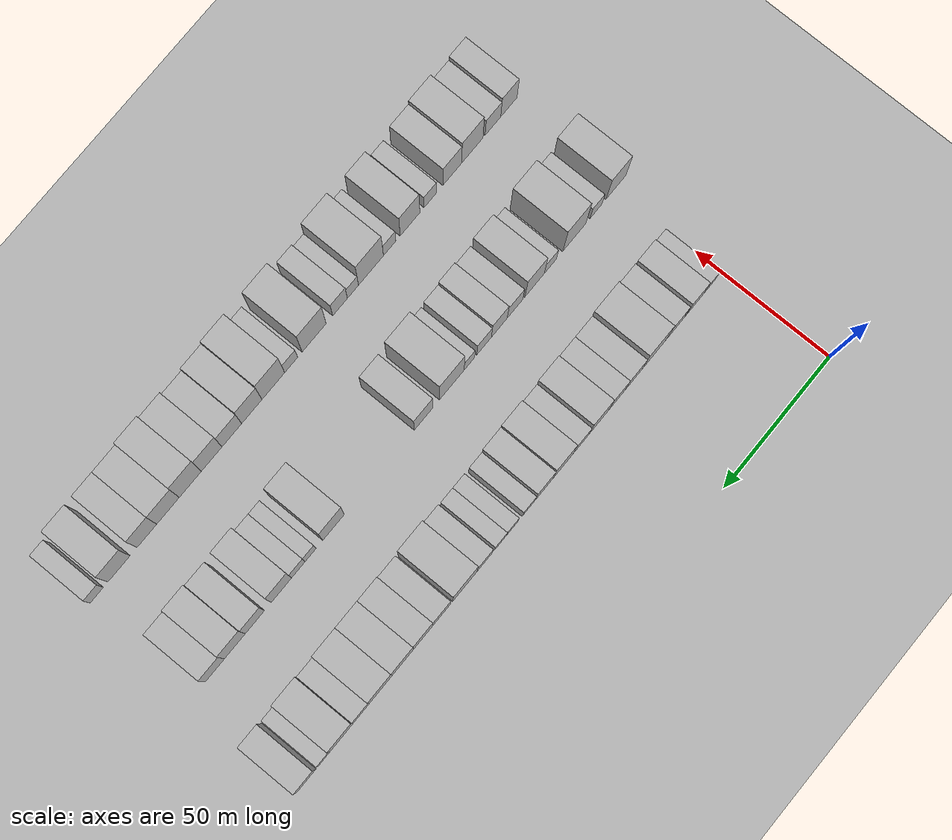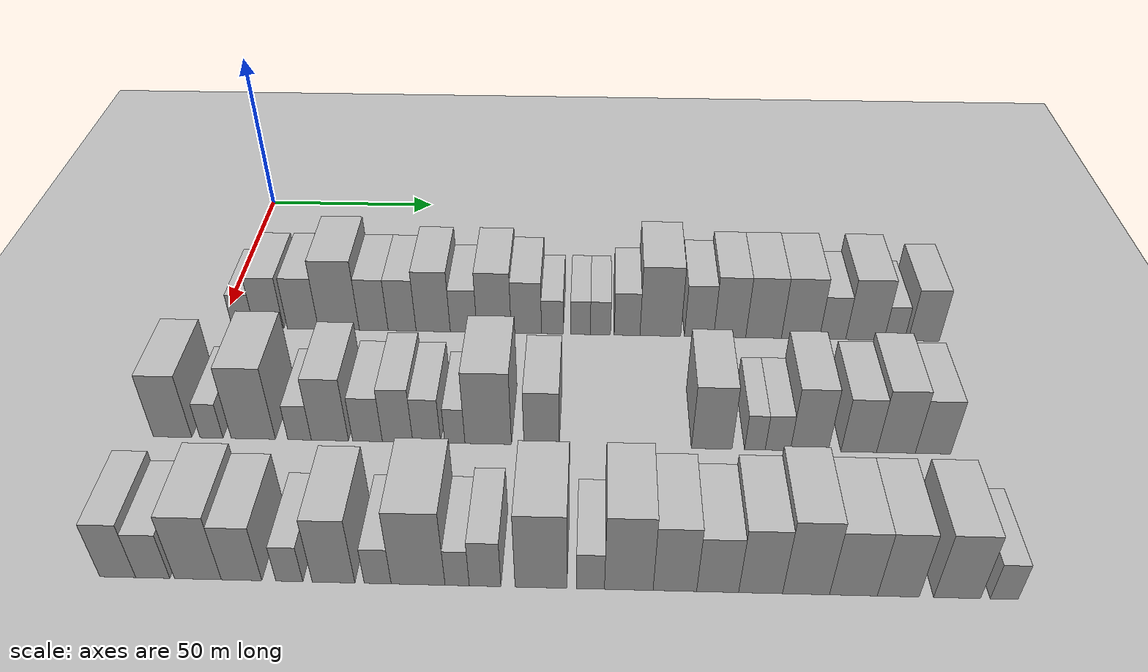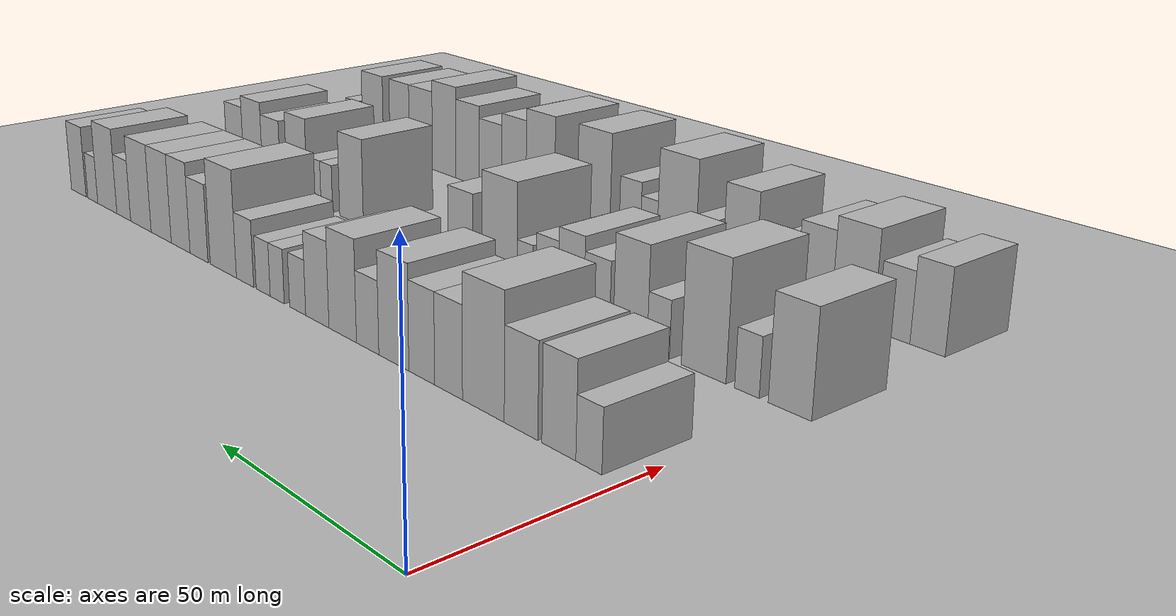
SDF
<sdf version="1.6">
 <world name="default">
  <include><name>ground_plane_1</name><uri>model://HANNAS_ground_plane</uri></include>
  <include>
   <name>ground_plane_2</name>
   <uri>model://HANNAS_ground_plane</uri>
   <pose>100 0 0  0 0 0</pose>
  </include>
  <model name="building_47">
   <static>1</static>
   <pose>50.0000 6.4486 0 0.000000 0.000000 0.000000</pose>
   <link name="link">
    <pose>0 0 6.00 0 0 0</pose>
    <collision name="collision"><geometry><box><size>20.0000 5.9728 12.0000</size></box></geometry></collision>
    <visual name="visual">
     <cast_shadows>0</cast_shadows>
     <geometry><box><size>20.0000 5.9728 12.0000</size></box></geometry>
     <material>
      <script>
       <uri>model://HANNAS_wall/materials/scripts</uri>
       <uri>model://HANNAS_wall/materials/textures</uri>
       <name>vrc/HANNAS_wall</name>
      </script>
     </material>
    </visual>
   </link>
  </model>
  <model name="building_48">
   <static>1</static>
   <pose>50.0000 13.4981 0 0.000000 0.000000 0.000000</pose>
   <link name="link">
    <pose>0 0 9.00 0 0 0</pose>
    <collision name="collision"><geometry><box><size>20.0000 8.1262 18.0000</size></box></geometry></collision>
    <visual name="visual">
     <cast_shadows>0</cast_shadows>
     <geometry><box><size>20.0000 8.1262 18.0000</size></box></geometry>
     <material>
      <script>
       <uri>model://HANNAS_wall/materials/scripts</uri>
       <uri>model://HANNAS_wall/materials/textures</uri>
       <name>vrc/HANNAS_wall</name>
      </script>
     </material>
    </visual>
   </link>
  </model>
  <model name="building_49">
   <static>1</static>
   <pose>50.0000 22.7994 0 0.000000 0.000000 0.000000</pose>
   <link name="link">
    <pose>0 0 9.00 0 0 0</pose>
    <collision name="collision"><geometry><box><size>20.0000 8.4763 18.0000</size></box></geometry></collision>
    <visual name="visual">
     <cast_shadows>0</cast_shadows>
     <geometry><box><size>20.0000 8.4763 18.0000</size></box></geometry>
     <material>
      <script>
       <uri>model://HANNAS_wall/materials/scripts</uri>
       <uri>model://HANNAS_wall/materials/textures</uri>
       <name>vrc/HANNAS_wall</name>
      </script>
     </material>
    </visual>
   </link>
  </model>
  <model name="building_50">
   <static>1</static>
   <pose>50.0000 32.6208 0 0.000000 0.000000 0.000000</pose>
   <link name="link">
    <pose>0 0 12.00 0 0 0</pose>
    <collision name="collision"><geometry><box><size>20.0000 11.1666 24.0000</size></box></geometry></collision>
    <visual name="visual">
     <cast_shadows>0</cast_shadows>
     <geometry><box><size>20.0000 11.1666 24.0000</size></box></geometry>
     <material>
      <script>
       <uri>model://HANNAS_wall/materials/scripts</uri>
       <uri>model://HANNAS_wall/materials/textures</uri>
       <name>vrc/HANNAS_wall</name>
      </script>
     </material>
    </visual>
   </link>
  </model>
  <model name="building_51">
   <static>1</static>
   <pose>50.0000 42.1323 0 0.000000 0.000000 0.000000</pose>
   <link name="link">
    <pose>0 0 9.00 0 0 0</pose>
    <collision name="collision"><geometry><box><size>20.0000 7.8563 18.0000</size></box></geometry></collision>
    <visual name="visual">
     <cast_shadows>0</cast_shadows>
     <geometry><box><size>20.0000 7.8563 18.0000</size></box></geometry>
     <material>
      <script>
       <uri>model://HANNAS_wall/materials/scripts</uri>
       <uri>model://HANNAS_wall/materials/textures</uri>
       <name>vrc/HANNAS_wall</name>
      </script>
     </material>
    </visual>
   </link>
  </model>
  <model name="building_52">
   <static>1</static>
   <pose>50.0000 49.8642 0 0.000000 0.000000 0.000000</pose>
   <link name="link">
    <pose>0 0 9.00 0 0 0</pose>
    <collision name="collision"><geometry><box><size>20.0000 7.6075 18.0000</size></box></geometry></collision>
    <visual name="visual">
     <cast_shadows>0</cast_shadows>
     <geometry><box><size>20.0000 7.6075 18.0000</size></box></geometry>
     <material>
      <script>
       <uri>model://HANNAS_wall/materials/scripts</uri>
       <uri>model://HANNAS_wall/materials/textures</uri>
       <name>vrc/HANNAS_wall</name>
      </script>
     </material>
    </visual>
   </link>
  </model>
  <model name="building_53">
   <static>1</static>
   <pose>50.0000 58.3111 0 0.000000 0.000000 0.000000</pose>
   <link name="link">
    <pose>0 0 10.50 0 0 0</pose>
    <collision name="collision"><geometry><box><size>20.0000 9.2863 21.0000</size></box></geometry></collision>
    <visual name="visual">
     <cast_shadows>0</cast_shadows>
     <geometry><box><size>20.0000 9.2863 21.0000</size></box></geometry>
     <material>
      <script>
       <uri>model://HANNAS_wall/materials/scripts</uri>
       <uri>model://HANNAS_wall/materials/textures</uri>
       <name>vrc/HANNAS_wall</name>
      </script>
     </material>
    </visual>
   </link>
  </model>
  <model name="building_54">
   <static>1</static>
   <pose>50.0000 66.5631 0 0.000000 0.000000 0.000000</pose>
   <link name="link">
    <pose>0 0 7.50 0 0 0</pose>
    <collision name="collision"><geometry><box><size>20.0000 7.2175 15.0000</size></box></geometry></collision>
    <visual name="visual">
     <cast_shadows>0</cast_shadows>
     <geometry><box><size>20.0000 7.2175 15.0000</size></box></geometry>
     <material>
      <script>
       <uri>model://HANNAS_wall/materials/scripts</uri>
       <uri>model://HANNAS_wall/materials/textures</uri>
       <name>vrc/HANNAS_wall</name>
      </script>
     </material>
    </visual>
   </link>
  </model>
  <model name="building_55">
   <static>1</static>
   <pose>50.0000 74.8144 0 0.000000 0.000000 0.000000</pose>
   <link name="link">
    <pose>0 0 10.50 0 0 0</pose>
    <collision name="collision"><geometry><box><size>20.0000 9.2851 21.0000</size></box></geometry></collision>
    <visual name="visual">
     <cast_shadows>0</cast_shadows>
     <geometry><box><size>20.0000 9.2851 21.0000</size></box></geometry>
     <material>
      <script>
       <uri>model://HANNAS_wall/materials/scripts</uri>
       <uri>model://HANNAS_wall/materials/textures</uri>
       <name>vrc/HANNAS_wall</name>
      </script>
     </material>
    </visual>
   </link>
  </model>
  <model name="building_56">
   <static>1</static>
   <pose>50.0000 83.5508 0 0.000000 0.000000 0.000000</pose>
   <link name="link">
    <pose>0 0 9.00 0 0 0</pose>
    <collision name="collision"><geometry><box><size>20.0000 8.1877 18.0000</size></box></geometry></collision>
    <visual name="visual">
     <cast_shadows>0</cast_shadows>
     <geometry><box><size>20.0000 8.1877 18.0000</size></box></geometry>
     <material>
      <script>
       <uri>model://HANNAS_wall/materials/scripts</uri>
       <uri>model://HANNAS_wall/materials/textures</uri>
       <name>vrc/HANNAS_wall</name>
      </script>
     </material>
    </visual>
   </link>
  </model>
  <model name="building_57">
   <static>1</static>
   <pose>50.0000 90.5819 0 0.000000 0.000000 0.000000</pose>
   <link name="link">
    <pose>0 0 6.00 0 0 0</pose>
    <collision name="collision"><geometry><box><size>20.0000 5.8745 12.0000</size></box></geometry></collision>
    <visual name="visual">
     <cast_shadows>0</cast_shadows>
     <geometry><box><size>20.0000 5.8745 12.0000</size></box></geometry>
     <material>
      <script>
       <uri>model://HANNAS_wall/materials/scripts</uri>
       <uri>model://HANNAS_wall/materials/textures</uri>
       <name>vrc/HANNAS_wall</name>
      </script>
     </material>
    </visual>
   </link>
  </model>
  <model name="building_58">
   <static>1</static>
   <pose>50.0000 98.1735 0 0.000000 0.000000 0.000000</pose>
   <link name="link">
    <pose>0 0 6.00 0 0 0</pose>
    <collision name="collision"><geometry><box><size>20.0000 5.3087 12.0000</size></box></geometry></collision>
    <visual name="visual">
     <cast_shadows>0</cast_shadows>
     <geometry><box><size>20.0000 5.3087 12.0000</size></box></geometry>
     <material>
      <script>
       <uri>model://HANNAS_wall/materials/scripts</uri>
       <uri>model://HANNAS_wall/materials/textures</uri>
       <name>vrc/HANNAS_wall</name>
      </script>
     </material>
    </visual>
   </link>
  </model>
  <model name="building_59">
   <static>1</static>
   <pose>50.0000 103.5518 0 0.000000 0.000000 0.000000</pose>
   <link name="link">
    <pose>0 0 6.00 0 0 0</pose>
    <collision name="collision"><geometry><box><size>20.0000 5.4480 12.0000</size></box></geometry></collision>
    <visual name="visual">
     <cast_shadows>0</cast_shadows>
     <geometry><box><size>20.0000 5.4480 12.0000</size></box></geometry>
     <material>
      <script>
       <uri>model://HANNAS_wall/materials/scripts</uri>
       <uri>model://HANNAS_wall/materials/textures</uri>
       <name>vrc/HANNAS_wall</name>
      </script>
     </material>
    </visual>
   </link>
  </model>
  <model name="building_60">
   <static>1</static>
   <pose>50.0000 110.7462 0 0.000000 0.000000 0.000000</pose>
   <link name="link">
    <pose>0 0 7.50 0 0 0</pose>
    <collision name="collision"><geometry><box><size>20.0000 6.9409 15.0000</size></box></geometry></collision>
    <visual name="visual">
     <cast_shadows>0</cast_shadows>
     <geometry><box><size>20.0000 6.9409 15.0000</size></box></geometry>
     <material>
      <script>
       <uri>model://HANNAS_wall/materials/scripts</uri>
       <uri>model://HANNAS_wall/materials/textures</uri>
       <name>vrc/HANNAS_wall</name>
      </script>
     </material>
    </visual>
   </link>
  </model>
  <model name="building_61">
   <static>1</static>
   <pose>50.0000 119.6971 0 0.000000 0.000000 0.000000</pose>
   <link name="link">
    <pose>0 0 12.00 0 0 0</pose>
    <collision name="collision"><geometry><box><size>20.0000 10.9610 24.0000</size></box></geometry></collision>
    <visual name="visual">
     <cast_shadows>0</cast_shadows>
     <geometry><box><size>20.0000 10.9610 24.0000</size></box></geometry>
     <material>
      <script>
       <uri>model://HANNAS_wall/materials/scripts</uri>
       <uri>model://HANNAS_wall/materials/textures</uri>
       <name>vrc/HANNAS_wall</name>
      </script>
     </material>
    </visual>
   </link>
  </model>
  <model name="building_62">
   <static>1</static>
   <pose>50.0000 130.1104 0 0.000000 0.000000 0.000000</pose>
   <link name="link">
    <pose>0 0 9.00 0 0 0</pose>
    <collision name="collision"><geometry><box><size>20.0000 7.8656 18.0000</size></box></geometry></collision>
    <visual name="visual">
     <cast_shadows>0</cast_shadows>
     <geometry><box><size>20.0000 7.8656 18.0000</size></box></geometry>
     <material>
      <script>
       <uri>model://HANNAS_wall/materials/scripts</uri>
       <uri>model://HANNAS_wall/materials/textures</uri>
       <name>vrc/HANNAS_wall</name>
      </script>
     </material>
    </visual>
   </link>
  </model>
  <model name="building_63">
   <static>1</static>
   <pose>50.0000 138.3364 0 0.000000 0.000000 0.000000</pose>
   <link name="link">
    <pose>0 0 10.50 0 0 0</pose>
    <collision name="collision"><geometry><box><size>20.0000 8.5863 21.0000</size></box></geometry></collision>
    <visual name="visual">
     <cast_shadows>0</cast_shadows>
     <geometry><box><size>20.0000 8.5863 21.0000</size></box></geometry>
     <material>
      <script>
       <uri>model://HANNAS_wall/materials/scripts</uri>
       <uri>model://HANNAS_wall/materials/textures</uri>
       <name>vrc/HANNAS_wall</name>
      </script>
     </material>
    </visual>
   </link>
  </model>
  <model name="building_64">
   <static>1</static>
   <pose>50.0000 147.4133 0 0.000000 0.000000 0.000000</pose>
   <link name="link">
    <pose>0 0 10.50 0 0 0</pose>
    <collision name="collision"><geometry><box><size>20.0000 9.5676 21.0000</size></box></geometry></collision>
    <visual name="visual">
     <cast_shadows>0</cast_shadows>
     <geometry><box><size>20.0000 9.5676 21.0000</size></box></geometry>
     <material>
      <script>
       <uri>model://HANNAS_wall/materials/scripts</uri>
       <uri>model://HANNAS_wall/materials/textures</uri>
       <name>vrc/HANNAS_wall</name>
      </script>
     </material>
    </visual>
   </link>
  </model>
  <model name="building_65">
   <static>1</static>
   <pose>50.0000 157.2730 0 0.000000 0.000000 0.000000</pose>
   <link name="link">
    <pose>0 0 10.50 0 0 0</pose>
    <collision name="collision"><geometry><box><size>20.0000 10.1517 21.0000</size></box></geometry></collision>
    <visual name="visual">
     <cast_shadows>0</cast_shadows>
     <geometry><box><size>20.0000 10.1517 21.0000</size></box></geometry>
     <material>
      <script>
       <uri>model://HANNAS_wall/materials/scripts</uri>
       <uri>model://HANNAS_wall/materials/textures</uri>
       <name>vrc/HANNAS_wall</name>
      </script>
     </material>
    </visual>
   </link>
  </model>
  <model name="building_66">
   <static>1</static>
   <pose>50.0000 165.8847 0 0.000000 0.000000 0.000000</pose>
   <link name="link">
    <pose>0 0 7.50 0 0 0</pose>
    <collision name="collision"><geometry><box><size>20.0000 7.0718 15.0000</size></box></geometry></collision>
    <visual name="visual">
     <cast_shadows>0</cast_shadows>
     <geometry><box><size>20.0000 7.0718 15.0000</size></box></geometry>
     <material>
      <script>
       <uri>model://HANNAS_wall/materials/scripts</uri>
       <uri>model://HANNAS_wall/materials/textures</uri>
       <name>vrc/HANNAS_wall</name>
      </script>
     </material>
    </visual>
   </link>
  </model>
  <model name="building_67">
   <static>1</static>
   <pose>50.0000 174.5126 0 0.000000 0.000000 0.000000</pose>
   <link name="link">
    <pose>0 0 10.50 0 0 0</pose>
    <collision name="collision"><geometry><box><size>20.0000 10.1839 21.0000</size></box></geometry></collision>
    <visual name="visual">
     <cast_shadows>0</cast_shadows>
     <geometry><box><size>20.0000 10.1839 21.0000</size></box></geometry>
     <material>
      <script>
       <uri>model://HANNAS_wall/materials/scripts</uri>
       <uri>model://HANNAS_wall/materials/textures</uri>
       <name>vrc/HANNAS_wall</name>
      </script>
     </material>
    </visual>
   </link>
  </model>
  <model name="building_68">
   <static>1</static>
   <pose>50.0000 182.3179 0 0.000000 0.000000 0.000000</pose>
   <link name="link">
    <pose>0 0 6.00 0 0 0</pose>
    <collision name="collision"><geometry><box><size>20.0000 5.4267 12.0000</size></box></geometry></collision>
    <visual name="visual">
     <cast_shadows>0</cast_shadows>
     <geometry><box><size>20.0000 5.4267 12.0000</size></box></geometry>
     <material>
      <script>
       <uri>model://HANNAS_wall/materials/scripts</uri>
       <uri>model://HANNAS_wall/materials/textures</uri>
       <name>vrc/HANNAS_wall</name>
      </script>
     </material>
    </visual>
   </link>
  </model>
  <model name="building_69">
   <static>1</static>
   <pose>50.0000 190.1722 0 0.000000 0.000000 0.000000</pose>
   <link name="link">
    <pose>0 0 9.00 0 0 0</pose>
    <collision name="collision"><geometry><box><size>20.0000 8.2820 18.0000</size></box></geometry></collision>
    <visual name="visual">
     <cast_shadows>0</cast_shadows>
     <geometry><box><size>20.0000 8.2820 18.0000</size></box></geometry>
     <material>
      <script>
       <uri>model://HANNAS_wall/materials/scripts</uri>
       <uri>model://HANNAS_wall/materials/textures</uri>
       <name>vrc/HANNAS_wall</name>
      </script>
     </material>
    </visual>
   </link>
  </model>
  <model name="building_127">
   <static>1</static>
   <pose>90.0000 -0.0496 0 0.000000 0.000000 0.000000</pose>
   <link name="link">
    <pose>0 0 10.50 0 0 0</pose>
    <collision name="collision"><geometry><box><size>20.0000 9.4225 21.0000</size></box></geometry></collision>
    <visual name="visual">
     <cast_shadows>0</cast_shadows>
     <geometry><box><size>20.0000 9.4225 21.0000</size></box></geometry>
     <material>
      <script>
       <uri>model://HANNAS_wall/materials/scripts</uri>
       <uri>model://HANNAS_wall/materials/textures</uri>
       <name>vrc/HANNAS_wall</name>
      </script>
     </material>
    </visual>
   </link>
  </model>
  <model name="building_128">
   <static>1</static>
   <pose>90.0000 9.4708 0 0.000000 0.000000 0.000000</pose>
   <link name="link">
    <pose>0 0 6.00 0 0 0</pose>
    <collision name="collision"><geometry><box><size>20.0000 5.6183 12.0000</size></box></geometry></collision>
    <visual name="visual">
     <cast_shadows>0</cast_shadows>
     <geometry><box><size>20.0000 5.6183 12.0000</size></box></geometry>
     <material>
      <script>
       <uri>model://HANNAS_wall/materials/scripts</uri>
       <uri>model://HANNAS_wall/materials/textures</uri>
       <name>vrc/HANNAS_wall</name>
      </script>
     </material>
    </visual>
   </link>
  </model>
  <model name="building_129">
   <static>1</static>
   <pose>90.0000 19.6852 0 0.000000 0.000000 0.000000</pose>
   <link name="link">
    <pose>0 0 12.00 0 0 0</pose>
    <collision name="collision"><geometry><box><size>20.0000 10.8103 24.0000</size></box></geometry></collision>
    <visual name="visual">
     <cast_shadows>0</cast_shadows>
     <geometry><box><size>20.0000 10.8103 24.0000</size></box></geometry>
     <material>
      <script>
       <uri>model://HANNAS_wall/materials/scripts</uri>
       <uri>model://HANNAS_wall/materials/textures</uri>
       <name>vrc/HANNAS_wall</name>
      </script>
     </material>
    </visual>
   </link>
  </model>
  <model name="building_130">
   <static>1</static>
   <pose>90.0000 30.9589 0 0.000000 0.000000 0.000000</pose>
   <link name="link">
    <pose>0 0 6.00 0 0 0</pose>
    <collision name="collision"><geometry><box><size>20.0000 5.7372 12.0000</size></box></geometry></collision>
    <visual name="visual">
     <cast_shadows>0</cast_shadows>
     <geometry><box><size>20.0000 5.7372 12.0000</size></box></geometry>
     <material>
      <script>
       <uri>model://HANNAS_wall/materials/scripts</uri>
       <uri>model://HANNAS_wall/materials/textures</uri>
       <name>vrc/HANNAS_wall</name>
      </script>
     </material>
    </visual>
   </link>
  </model>
  <model name="building_131">
   <static>1</static>
   <pose>90.0000 38.3467 0 0.000000 0.000000 0.000000</pose>
   <link name="link">
    <pose>0 0 10.50 0 0 0</pose>
    <collision name="collision"><geometry><box><size>20.0000 9.0385 21.0000</size></box></geometry></collision>
    <visual name="visual">
     <cast_shadows>0</cast_shadows>
     <geometry><box><size>20.0000 9.0385 21.0000</size></box></geometry>
     <material>
      <script>
       <uri>model://HANNAS_wall/materials/scripts</uri>
       <uri>model://HANNAS_wall/materials/textures</uri>
       <name>vrc/HANNAS_wall</name>
      </script>
     </material>
    </visual>
   </link>
  </model>
  <model name="building_132">
   <static>1</static>
   <pose>90.0000 47.4747 0 0.000000 0.000000 0.000000</pose>
   <link name="link">
    <pose>0 0 7.50 0 0 0</pose>
    <collision name="collision"><geometry><box><size>20.0000 7.2173 15.0000</size></box></geometry></collision>
    <visual name="visual">
     <cast_shadows>0</cast_shadows>
     <geometry><box><size>20.0000 7.2173 15.0000</size></box></geometry>
     <material>
      <script>
       <uri>model://HANNAS_wall/materials/scripts</uri>
       <uri>model://HANNAS_wall/materials/textures</uri>
       <name>vrc/HANNAS_wall</name>
      </script>
     </material>
    </visual>
   </link>
  </model>
  <model name="building_133">
   <static>1</static>
   <pose>90.0000 54.7819 0 0.000000 0.000000 0.000000</pose>
   <link name="link">
    <pose>0 0 9.00 0 0 0</pose>
    <collision name="collision"><geometry><box><size>20.0000 7.3971 18.0000</size></box></geometry></collision>
    <visual name="visual">
     <cast_shadows>0</cast_shadows>
     <geometry><box><size>20.0000 7.3971 18.0000</size></box></geometry>
     <material>
      <script>
       <uri>model://HANNAS_wall/materials/scripts</uri>
       <uri>model://HANNAS_wall/materials/textures</uri>
       <name>vrc/HANNAS_wall</name>
      </script>
     </material>
    </visual>
   </link>
  </model>
  <model name="building_134">
   <static>1</static>
   <pose>90.0000 61.8422 0 0.000000 0.000000 0.000000</pose>
   <link name="link">
    <pose>0 0 7.50 0 0 0</pose>
    <collision name="collision"><geometry><box><size>20.0000 6.7236 15.0000</size></box></geometry></collision>
    <visual name="visual">
     <cast_shadows>0</cast_shadows>
     <geometry><box><size>20.0000 6.7236 15.0000</size></box></geometry>
     <material>
      <script>
       <uri>model://HANNAS_wall/materials/scripts</uri>
       <uri>model://HANNAS_wall/materials/textures</uri>
       <name>vrc/HANNAS_wall</name>
      </script>
     </material>
    </visual>
   </link>
  </model>
  <model name="building_135">
   <static>1</static>
   <pose>90.0000 68.6454 0 0.000000 0.000000 0.000000</pose>
   <link name="link">
    <pose>0 0 6.00 0 0 0</pose>
    <collision name="collision"><geometry><box><size>20.0000 4.8828 12.0000</size></box></geometry></collision>
    <visual name="visual">
     <cast_shadows>0</cast_shadows>
     <geometry><box><size>20.0000 4.8828 12.0000</size></box></geometry>
     <material>
      <script>
       <uri>model://HANNAS_wall/materials/scripts</uri>
       <uri>model://HANNAS_wall/materials/textures</uri>
       <name>vrc/HANNAS_wall</name>
      </script>
     </material>
    </visual>
   </link>
  </model>
  <model name="building_136">
   <static>1</static>
   <pose>90.0000 76.7053 0 0.000000 0.000000 0.000000</pose>
   <link name="link">
    <pose>0 0 12.00 0 0 0</pose>
    <collision name="collision"><geometry><box><size>20.0000 11.2369 24.0000</size></box></geometry></collision>
    <visual name="visual">
     <cast_shadows>0</cast_shadows>
     <geometry><box><size>20.0000 11.2369 24.0000</size></box></geometry>
     <material>
      <script>
       <uri>model://HANNAS_wall/materials/scripts</uri>
       <uri>model://HANNAS_wall/materials/textures</uri>
       <name>vrc/HANNAS_wall</name>
      </script>
     </material>
    </visual>
   </link>
  </model>
  <model name="building_137">
   <static>1</static>
   <pose>90.0000 89.5896 0 0.000000 0.000000 0.000000</pose>
   <link name="link">
    <pose>0 0 9.00 0 0 0</pose>
    <collision name="collision"><geometry><box><size>20.0000 8.5318 18.0000</size></box></geometry></collision>
    <visual name="visual">
     <cast_shadows>0</cast_shadows>
     <geometry><box><size>20.0000 8.5318 18.0000</size></box></geometry>
     <material>
      <script>
       <uri>model://HANNAS_wall/materials/scripts</uri>
       <uri>model://HANNAS_wall/materials/textures</uri>
       <name>vrc/HANNAS_wall</name>
      </script>
     </material>
    </visual>
   </link>
  </model>
  <model name="building_138">
   <static>1</static>
   <pose>90.0000 130.4260 0 0.000000 0.000000 0.000000</pose>
   <link name="link">
    <pose>0 0 10.50 0 0 0</pose>
    <collision name="collision"><geometry><box><size>20.0000 9.7137 21.0000</size></box></geometry></collision>
    <visual name="visual">
     <cast_shadows>0</cast_shadows>
     <geometry><box><size>20.0000 9.7137 21.0000</size></box></geometry>
     <material>
      <script>
       <uri>model://HANNAS_wall/materials/scripts</uri>
       <uri>model://HANNAS_wall/materials/textures</uri>
       <name>vrc/HANNAS_wall</name>
      </script>
     </material>
    </visual>
   </link>
  </model>
  <model name="building_139">
   <static>1</static>
   <pose>90.0000 140.7499 0 0.000000 0.000000 0.000000</pose>
   <link name="link">
    <pose>0 0 6.00 0 0 0</pose>
    <collision name="collision"><geometry><box><size>20.0000 4.9340 12.0000</size></box></geometry></collision>
    <visual name="visual">
     <cast_shadows>0</cast_shadows>
     <geometry><box><size>20.0000 4.9340 12.0000</size></box></geometry>
     <material>
      <script>
       <uri>model://HANNAS_wall/materials/scripts</uri>
       <uri>model://HANNAS_wall/materials/textures</uri>
       <name>vrc/HANNAS_wall</name>
      </script>
     </material>
    </visual>
   </link>
  </model>
  <model name="building_140">
   <static>1</static>
   <pose>90.0000 146.2166 0 0.000000 0.000000 0.000000</pose>
   <link name="link">
    <pose>0 0 6.00 0 0 0</pose>
    <collision name="collision"><geometry><box><size>20.0000 5.9994 12.0000</size></box></geometry></collision>
    <visual name="visual">
     <cast_shadows>0</cast_shadows>
     <geometry><box><size>20.0000 5.9994 12.0000</size></box></geometry>
     <material>
      <script>
       <uri>model://HANNAS_wall/materials/scripts</uri>
       <uri>model://HANNAS_wall/materials/textures</uri>
       <name>vrc/HANNAS_wall</name>
      </script>
     </material>
    </visual>
   </link>
  </model>
  <model name="building_141">
   <static>1</static>
   <pose>90.0000 153.7360 0 0.000000 0.000000 0.000000</pose>
   <link name="link">
    <pose>0 0 10.50 0 0 0</pose>
    <collision name="collision"><geometry><box><size>20.0000 9.0393 21.0000</size></box></geometry></collision>
    <visual name="visual">
     <cast_shadows>0</cast_shadows>
     <geometry><box><size>20.0000 9.0393 21.0000</size></box></geometry>
     <material>
      <script>
       <uri>model://HANNAS_wall/materials/scripts</uri>
       <uri>model://HANNAS_wall/materials/textures</uri>
       <name>vrc/HANNAS_wall</name>
      </script>
     </material>
    </visual>
   </link>
  </model>
  <model name="building_142">
   <static>1</static>
   <pose>90.0000 165.4950 0 0.000000 0.000000 0.000000</pose>
   <link name="link">
    <pose>0 0 9.00 0 0 0</pose>
    <collision name="collision"><geometry><box><size>20.0000 8.4787 18.0000</size></box></geometry></collision>
    <visual name="visual">
     <cast_shadows>0</cast_shadows>
     <geometry><box><size>20.0000 8.4787 18.0000</size></box></geometry>
     <material>
      <script>
       <uri>model://HANNAS_wall/materials/scripts</uri>
       <uri>model://HANNAS_wall/materials/textures</uri>
       <name>vrc/HANNAS_wall</name>
      </script>
     </material>
    </visual>
   </link>
  </model>
  <model name="building_143">
   <static>1</static>
   <pose>90.0000 174.3295 0 0.000000 0.000000 0.000000</pose>
   <link name="link">
    <pose>0 0 10.50 0 0 0</pose>
    <collision name="collision"><geometry><box><size>20.0000 9.1903 21.0000</size></box></geometry></collision>
    <visual name="visual">
     <cast_shadows>0</cast_shadows>
     <geometry><box><size>20.0000 9.1903 21.0000</size></box></geometry>
     <material>
      <script>
       <uri>model://HANNAS_wall/materials/scripts</uri>
       <uri>model://HANNAS_wall/materials/textures</uri>
       <name>vrc/HANNAS_wall</name>
      </script>
     </material>
    </visual>
   </link>
  </model>
  <model name="building_144">
   <static>1</static>
   <pose>90.0000 183.1304 0 0.000000 0.000000 0.000000</pose>
   <link name="link">
    <pose>0 0 9.00 0 0 0</pose>
    <collision name="collision"><geometry><box><size>20.0000 8.4115 18.0000</size></box></geometry></collision>
    <visual name="visual">
     <cast_shadows>0</cast_shadows>
     <geometry><box><size>20.0000 8.4115 18.0000</size></box></geometry>
     <material>
      <script>
       <uri>model://HANNAS_wall/materials/scripts</uri>
       <uri>model://HANNAS_wall/materials/textures</uri>
       <name>vrc/HANNAS_wall</name>
      </script>
     </material>
    </visual>
   </link>
  </model>
  <model name="building_205">
   <static>1</static>
   <pose>130.0000 1.0100 0 0.000000 0.000000 0.000000</pose>
   <link name="link">
    <pose>0 0 9.00 0 0 0</pose>
    <collision name="collision"><geometry><box><size>20.0000 7.7210 18.0000</size></box></geometry></collision>
    <visual name="visual">
     <cast_shadows>0</cast_shadows>
     <geometry><box><size>20.0000 7.7210 18.0000</size></box></geometry>
     <material>
      <script>
       <uri>model://HANNAS_wall/materials/scripts</uri>
       <uri>model://HANNAS_wall/materials/textures</uri>
       <name>vrc/HANNAS_wall</name>
      </script>
     </material>
    </visual>
   </link>
  </model>
  <model name="building_206">
   <static>1</static>
   <pose>130.0000 8.5420 0 0.000000 0.000000 0.000000</pose>
   <link name="link">
    <pose>0 0 7.50 0 0 0</pose>
    <collision name="collision"><geometry><box><size>20.0000 7.3432 15.0000</size></box></geometry></collision>
    <visual name="visual">
     <cast_shadows>0</cast_shadows>
     <geometry><box><size>20.0000 7.3432 15.0000</size></box></geometry>
     <material>
      <script>
       <uri>model://HANNAS_wall/materials/scripts</uri>
       <uri>model://HANNAS_wall/materials/textures</uri>
       <name>vrc/HANNAS_wall</name>
      </script>
     </material>
    </visual>
   </link>
  </model>
  <model name="building_207">
   <static>1</static>
   <pose>130.0000 18.2464 0 0.000000 0.000000 0.000000</pose>
   <link name="link">
    <pose>0 0 10.50 0 0 0</pose>
    <collision name="collision"><geometry><box><size>20.0000 10.0656 21.0000</size></box></geometry></collision>
    <visual name="visual">
     <cast_shadows>0</cast_shadows>
     <geometry><box><size>20.0000 10.0656 21.0000</size></box></geometry>
     <material>
      <script>
       <uri>model://HANNAS_wall/materials/scripts</uri>
       <uri>model://HANNAS_wall/materials/textures</uri>
       <name>vrc/HANNAS_wall</name>
      </script>
     </material>
    </visual>
   </link>
  </model>
  <model name="building_208">
   <static>1</static>
   <pose>130.0000 27.6172 0 0.000000 0.000000 0.000000</pose>
   <link name="link">
    <pose>0 0 9.00 0 0 0</pose>
    <collision name="collision"><geometry><box><size>20.0000 8.6760 18.0000</size></box></geometry></collision>
    <visual name="visual">
     <cast_shadows>0</cast_shadows>
     <geometry><box><size>20.0000 8.6760 18.0000</size></box></geometry>
     <material>
      <script>
       <uri>model://HANNAS_wall/materials/scripts</uri>
       <uri>model://HANNAS_wall/materials/textures</uri>
       <name>vrc/HANNAS_wall</name>
      </script>
     </material>
    </visual>
   </link>
  </model>
  <model name="building_209">
   <static>1</static>
   <pose>130.0000 37.8376 0 0.000000 0.000000 0.000000</pose>
   <link name="link">
    <pose>0 0 6.00 0 0 0</pose>
    <collision name="collision"><geometry><box><size>20.0000 5.7648 12.0000</size></box></geometry></collision>
    <visual name="visual">
     <cast_shadows>0</cast_shadows>
     <geometry><box><size>20.0000 5.7648 12.0000</size></box></geometry>
     <material>
      <script>
       <uri>model://HANNAS_wall/materials/scripts</uri>
       <uri>model://HANNAS_wall/materials/textures</uri>
       <name>vrc/HANNAS_wall</name>
      </script>
     </material>
    </visual>
   </link>
  </model>
  <model name="building_210">
   <static>1</static>
   <pose>130.0000 47.2789 0 0.000000 0.000000 0.000000</pose>
   <link name="link">
    <pose>0 0 10.50 0 0 0</pose>
    <collision name="collision"><geometry><box><size>20.0000 9.1178 21.0000</size></box></geometry></collision>
    <visual name="visual">
     <cast_shadows>0</cast_shadows>
     <geometry><box><size>20.0000 9.1178 21.0000</size></box></geometry>
     <material>
      <script>
       <uri>model://HANNAS_wall/materials/scripts</uri>
       <uri>model://HANNAS_wall/materials/textures</uri>
       <name>vrc/HANNAS_wall</name>
      </script>
     </material>
    </visual>
   </link>
  </model>
  <model name="building_211">
   <static>1</static>
   <pose>130.0000 56.7065 0 0.000000 0.000000 0.000000</pose>
   <link name="link">
    <pose>0 0 6.00 0 0 0</pose>
    <collision name="collision"><geometry><box><size>20.0000 5.7373 12.0000</size></box></geometry></collision>
    <visual name="visual">
     <cast_shadows>0</cast_shadows>
     <geometry><box><size>20.0000 5.7373 12.0000</size></box></geometry>
     <material>
      <script>
       <uri>model://HANNAS_wall/materials/scripts</uri>
       <uri>model://HANNAS_wall/materials/textures</uri>
       <name>vrc/HANNAS_wall</name>
      </script>
     </material>
    </visual>
   </link>
  </model>
  <model name="building_212">
   <static>1</static>
   <pose>130.0000 65.3013 0 0.000000 0.000000 0.000000</pose>
   <link name="link">
    <pose>0 0 12.00 0 0 0</pose>
    <collision name="collision"><geometry><box><size>20.0000 11.4524 24.0000</size></box></geometry></collision>
    <visual name="visual">
     <cast_shadows>0</cast_shadows>
     <geometry><box><size>20.0000 11.4524 24.0000</size></box></geometry>
     <material>
      <script>
       <uri>model://HANNAS_wall/materials/scripts</uri>
       <uri>model://HANNAS_wall/materials/textures</uri>
       <name>vrc/HANNAS_wall</name>
      </script>
     </material>
    </visual>
   </link>
  </model>
  <model name="building_213">
   <static>1</static>
   <pose>130.0000 73.5931 0 0.000000 0.000000 0.000000</pose>
   <link name="link">
    <pose>0 0 6.00 0 0 0</pose>
    <collision name="collision"><geometry><box><size>20.0000 5.1312 12.0000</size></box></geometry></collision>
    <visual name="visual">
     <cast_shadows>0</cast_shadows>
     <geometry><box><size>20.0000 5.1312 12.0000</size></box></geometry>
     <material>
      <script>
       <uri>model://HANNAS_wall/materials/scripts</uri>
       <uri>model://HANNAS_wall/materials/textures</uri>
       <name>vrc/HANNAS_wall</name>
      </script>
     </material>
    </visual>
   </link>
  </model>
  <model name="building_214">
   <static>1</static>
   <pose>130.0000 79.5127 0 0.000000 0.000000 0.000000</pose>
   <link name="link">
    <pose>0 0 7.50 0 0 0</pose>
    <collision name="collision"><geometry><box><size>20.0000 6.7079 15.0000</size></box></geometry></collision>
    <visual name="visual">
     <cast_shadows>0</cast_shadows>
     <geometry><box><size>20.0000 6.7079 15.0000</size></box></geometry>
     <material>
      <script>
       <uri>model://HANNAS_wall/materials/scripts</uri>
       <uri>model://HANNAS_wall/materials/textures</uri>
       <name>vrc/HANNAS_wall</name>
      </script>
     </material>
    </visual>
   </link>
  </model>
  <model name="building_215">
   <static>1</static>
   <pose>130.0000 91.3481 0 0.000000 0.000000 0.000000</pose>
   <link name="link">
    <pose>0 0 12.00 0 0 0</pose>
    <collision name="collision"><geometry><box><size>20.0000 10.9629 24.0000</size></box></geometry></collision>
    <visual name="visual">
     <cast_shadows>0</cast_shadows>
     <geometry><box><size>20.0000 10.9629 24.0000</size></box></geometry>
     <material>
      <script>
       <uri>model://HANNAS_wall/materials/scripts</uri>
       <uri>model://HANNAS_wall/materials/textures</uri>
       <name>vrc/HANNAS_wall</name>
      </script>
     </material>
    </visual>
   </link>
  </model>
  <model name="building_216">
   <static>1</static>
   <pose>130.0000 101.7891 0 0.000000 0.000000 0.000000</pose>
   <link name="link">
    <pose>0 0 6.00 0 0 0</pose>
    <collision name="collision"><geometry><box><size>20.0000 5.9192 12.0000</size></box></geometry></collision>
    <visual name="visual">
     <cast_shadows>0</cast_shadows>
     <geometry><box><size>20.0000 5.9192 12.0000</size></box></geometry>
     <material>
      <script>
       <uri>model://HANNAS_wall/materials/scripts</uri>
       <uri>model://HANNAS_wall/materials/textures</uri>
       <name>vrc/HANNAS_wall</name>
      </script>
     </material>
    </visual>
   </link>
  </model>
  <model name="building_217">
   <static>1</static>
   <pose>130.0000 109.8749 0 0.000000 0.000000 0.000000</pose>
   <link name="link">
    <pose>0 0 12.00 0 0 0</pose>
    <collision name="collision"><geometry><box><size>20.0000 10.2525 24.0000</size></box></geometry></collision>
    <visual name="visual">
     <cast_shadows>0</cast_shadows>
     <geometry><box><size>20.0000 10.2525 24.0000</size></box></geometry>
     <material>
      <script>
       <uri>model://HANNAS_wall/materials/scripts</uri>
       <uri>model://HANNAS_wall/materials/textures</uri>
       <name>vrc/HANNAS_wall</name>
      </script>
     </material>
    </visual>
   </link>
  </model>
  <model name="building_218">
   <static>1</static>
   <pose>130.0000 119.5810 0 0.000000 0.000000 0.000000</pose>
   <link name="link">
    <pose>0 0 10.50 0 0 0</pose>
    <collision name="collision"><geometry><box><size>20.0000 9.1596 21.0000</size></box></geometry></collision>
    <visual name="visual">
     <cast_shadows>0</cast_shadows>
     <geometry><box><size>20.0000 9.1596 21.0000</size></box></geometry>
     <material>
      <script>
       <uri>model://HANNAS_wall/materials/scripts</uri>
       <uri>model://HANNAS_wall/materials/textures</uri>
       <name>vrc/HANNAS_wall</name>
      </script>
     </material>
    </visual>
   </link>
  </model>
  <model name="building_219">
   <static>1</static>
   <pose>130.0000 128.5711 0 0.000000 0.000000 0.000000</pose>
   <link name="link">
    <pose>0 0 9.00 0 0 0</pose>
    <collision name="collision"><geometry><box><size>20.0000 8.8206 18.0000</size></box></geometry></collision>
    <visual name="visual">
     <cast_shadows>0</cast_shadows>
     <geometry><box><size>20.0000 8.8206 18.0000</size></box></geometry>
     <material>
      <script>
       <uri>model://HANNAS_wall/materials/scripts</uri>
       <uri>model://HANNAS_wall/materials/textures</uri>
       <name>vrc/HANNAS_wall</name>
      </script>
     </material>
    </visual>
   </link>
  </model>
  <model name="building_220">
   <static>1</static>
   <pose>130.0000 137.5780 0 0.000000 0.000000 0.000000</pose>
   <link name="link">
    <pose>0 0 10.50 0 0 0</pose>
    <collision name="collision"><geometry><box><size>20.0000 9.1932 21.0000</size></box></geometry></collision>
    <visual name="visual">
     <cast_shadows>0</cast_shadows>
     <geometry><box><size>20.0000 9.1932 21.0000</size></box></geometry>
     <material>
      <script>
       <uri>model://HANNAS_wall/materials/scripts</uri>
       <uri>model://HANNAS_wall/materials/textures</uri>
       <name>vrc/HANNAS_wall</name>
      </script>
     </material>
    </visual>
   </link>
  </model>
  <model name="building_221">
   <static>1</static>
   <pose>130.0000 147.0918 0 0.000000 0.000000 0.000000</pose>
   <link name="link">
    <pose>0 0 12.00 0 0 0</pose>
    <collision name="collision"><geometry><box><size>20.0000 9.8345 24.0000</size></box></geometry></collision>
    <visual name="visual">
     <cast_shadows>0</cast_shadows>
     <geometry><box><size>20.0000 9.8345 24.0000</size></box></geometry>
     <material>
      <script>
       <uri>model://HANNAS_wall/materials/scripts</uri>
       <uri>model://HANNAS_wall/materials/textures</uri>
       <name>vrc/HANNAS_wall</name>
      </script>
     </material>
    </visual>
   </link>
  </model>
  <model name="building_222">
   <static>1</static>
   <pose>130.0000 157.0035 0 0.000000 0.000000 0.000000</pose>
   <link name="link">
    <pose>0 0 10.50 0 0 0</pose>
    <collision name="collision"><geometry><box><size>20.0000 9.9888 21.0000</size></box></geometry></collision>
    <visual name="visual">
     <cast_shadows>0</cast_shadows>
     <geometry><box><size>20.0000 9.9888 21.0000</size></box></geometry>
     <material>
      <script>
       <uri>model://HANNAS_wall/materials/scripts</uri>
       <uri>model://HANNAS_wall/materials/textures</uri>
       <name>vrc/HANNAS_wall</name>
      </script>
     </material>
    </visual>
   </link>
  </model>
  <model name="building_223">
   <static>1</static>
   <pose>130.0000 166.3717 0 0.000000 0.000000 0.000000</pose>
   <link name="link">
    <pose>0 0 10.50 0 0 0</pose>
    <collision name="collision"><geometry><box><size>20.0000 8.7478 21.0000</size></box></geometry></collision>
    <visual name="visual">
     <cast_shadows>0</cast_shadows>
     <geometry><box><size>20.0000 8.7478 21.0000</size></box></geometry>
     <material>
      <script>
       <uri>model://HANNAS_wall/materials/scripts</uri>
       <uri>model://HANNAS_wall/materials/textures</uri>
       <name>vrc/HANNAS_wall</name>
      </script>
     </material>
    </visual>
   </link>
  </model>
  <model name="building_224">
   <static>1</static>
   <pose>130.0000 178.6219 0 0.000000 0.000000 0.000000</pose>
   <link name="link">
    <pose>0 0 10.50 0 0 0</pose>
    <collision name="collision"><geometry><box><size>20.0000 9.7526 21.0000</size></box></geometry></collision>
    <visual name="visual">
     <cast_shadows>0</cast_shadows>
     <geometry><box><size>20.0000 9.7526 21.0000</size></box></geometry>
     <material>
      <script>
       <uri>model://HANNAS_wall/materials/scripts</uri>
       <uri>model://HANNAS_wall/materials/textures</uri>
       <name>vrc/HANNAS_wall</name>
      </script>
     </material>
    </visual>
   </link>
  </model>
  <model name="building_225">
   <static>1</static>
   <pose>130.0000 188.3901 0 0.000000 0.000000 0.000000</pose>
   <link name="link">
    <pose>0 0 6.00 0 0 0</pose>
    <collision name="collision"><geometry><box><size>20.0000 5.7838 12.0000</size></box></geometry></collision>
    <visual name="visual">
     <cast_shadows>0</cast_shadows>
     <geometry><box><size>20.0000 5.7838 12.0000</size></box></geometry>
     <material>
      <script>
       <uri>model://HANNAS_wall/materials/scripts</uri>
       <uri>model://HANNAS_wall/materials/textures</uri>
       <name>vrc/HANNAS_wall</name>
      </script>
     </material>
    </visual>
   </link>
  </model>
 </world>
</sdf>
